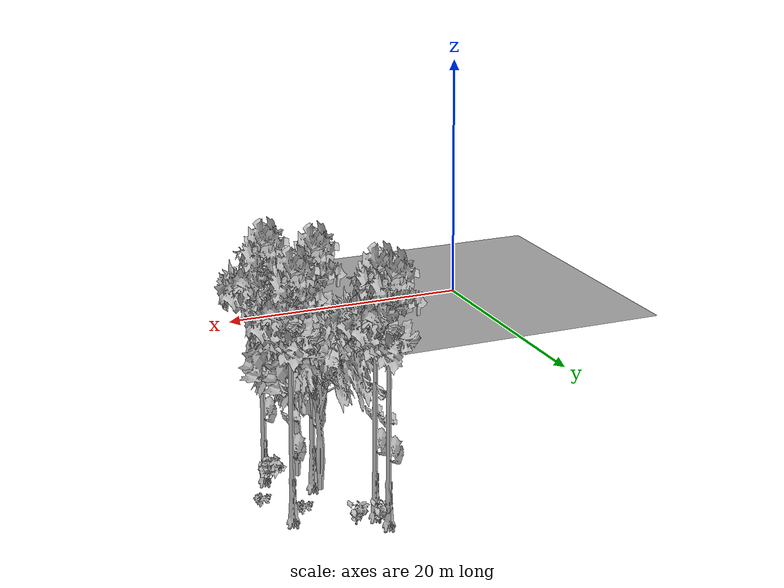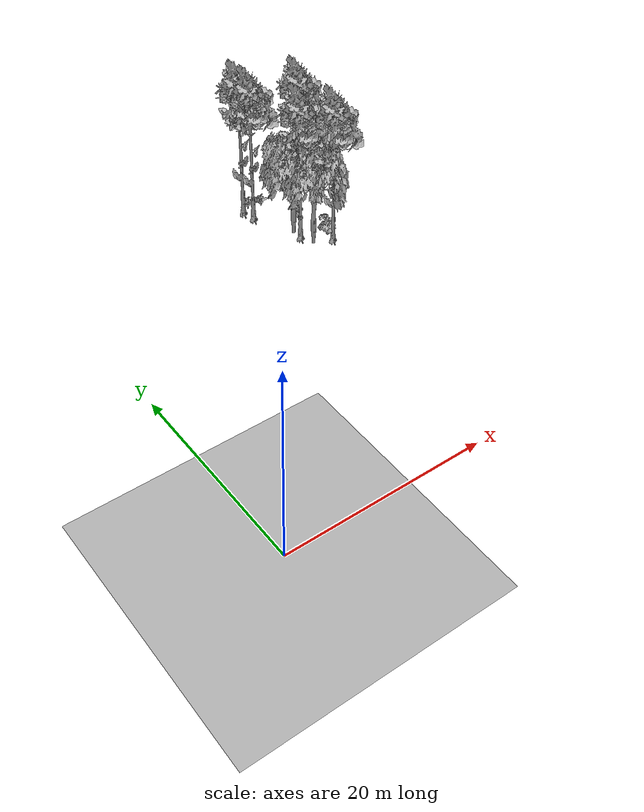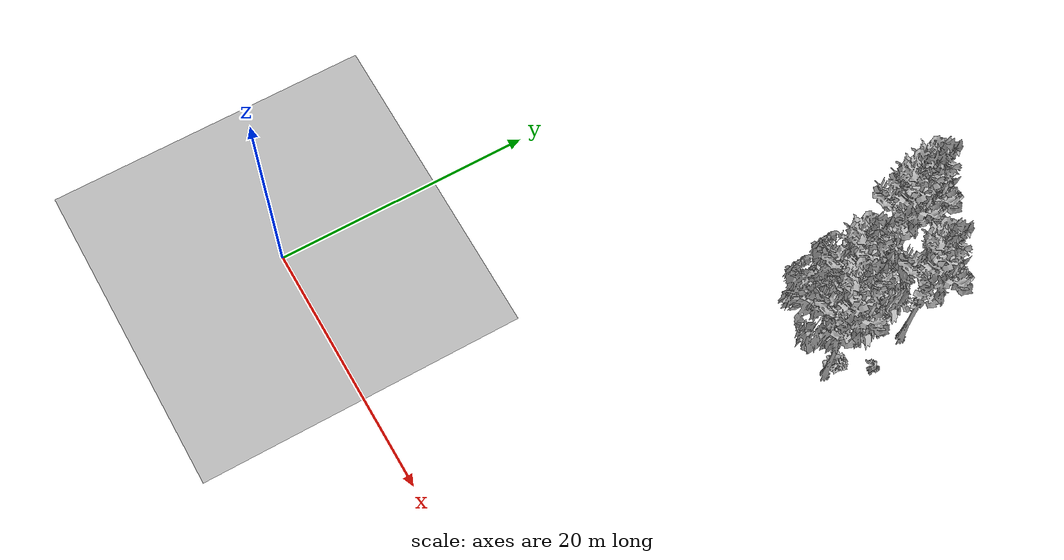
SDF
<sdf version="1.7">
 <world name="default">
  <model name="ground_plane">
   <static>1</static>
   <link name="link">
    <collision name="collision">
     <pose>-50 0 0 0 -0 0</pose>
     <geometry><plane><normal>0 0 1</normal><size>80 80</size></plane></geometry>
     <surface><contact><ode><min_depth>0.01</min_depth><max_vel>0</max_vel></ode></contact></surface>
    </collision>
    <visual name="grass">
     <cast_shadows>0</cast_shadows>
     <geometry>
      <mesh>
       <scale>0.46714285714285714 0.46714285714285714 0.1</scale>
       <uri>file://grass_plane/meshes/grass_plane.dae</uri>
      </mesh>
     </geometry>
    </visual>
   </link>
  </model>
  <model name="Tree 368">
   <static>1</static>
   <pose>24.92402232309221 30.083168545752613 0 1.57079 -0 0</pose>
   <link name="link">
    <collision name="collision">
     <geometry><mesh><scale>3.5 5 3.5</scale><uri>model://tree_2/meshes/tree_2.obj</uri></mesh></geometry>
    </collision>
    <visual name="visual">
     <geometry><mesh><scale>3.5 5 3.5</scale><uri>model://tree_2/meshes/tree_2.obj</uri></mesh></geometry>
    </visual>
   </link>
  </model>
  <model name="Tree 371">
   <static>1</static>
   <pose>22.213944063124195 38.674689030685215 0 1.57079 -0 0</pose>
   <link name="link">
    <collision name="collision">
     <geometry><mesh><scale>3.5 5 3.5</scale><uri>model://tree_9/meshes/tree_9.obj</uri></mesh></geometry>
    </collision>
    <visual name="visual">
     <geometry><mesh><scale>3.5 5 3.5</scale><uri>model://tree_9/meshes/tree_9.obj</uri></mesh></geometry>
    </visual>
   </link>
  </model>
  <model name="Tree 378">
   <static>1</static>
   <pose>27.05958636016682 29.546473164762105 0 1.57079 -0 0</pose>
   <link name="link">
    <collision name="collision">
     <geometry><mesh><scale>3.5 5 3.5</scale><uri>model://tree_9/meshes/tree_9.obj</uri></mesh></geometry>
    </collision>
    <visual name="visual">
     <geometry><mesh><scale>3.5 5 3.5</scale><uri>model://tree_9/meshes/tree_9.obj</uri></mesh></geometry>
    </visual>
   </link>
  </model>
  <model name="Tree 452">
   <static>1</static>
   <pose>24.562983359392383 31.73903686336351 0 1.57079 -0 0</pose>
   <link name="link">
    <collision name="collision">
     <geometry><mesh><scale>3.5 5 3.5</scale><uri>model://tree_9/meshes/tree_9.obj</uri></mesh></geometry>
    </collision>
    <visual name="visual">
     <geometry><mesh><scale>3.5 5 3.5</scale><uri>model://tree_9/meshes/tree_9.obj</uri></mesh></geometry>
    </visual>
   </link>
  </model>
  <model name="Tree 484">
   <static>1</static>
   <pose>24.299701562466566 32.649291122872924 0 1.57079 -0 0</pose>
   <link name="link">
    <collision name="collision">
     <geometry><mesh><scale>3.5 5 3.5</scale><uri>model://tree_2/meshes/tree_2.obj</uri></mesh></geometry>
    </collision>
    <visual name="visual">
     <geometry><mesh><scale>3.5 5 3.5</scale><uri>model://tree_2/meshes/tree_2.obj</uri></mesh></geometry>
    </visual>
   </link>
  </model>
  <model name="Tree 535">
   <static>1</static>
   <pose>22.4898139505776 37.20139377293691 0 1.57079 -0 0</pose>
   <link name="link">
    <collision name="collision">
     <geometry><mesh><scale>3.5 5 3.5</scale><uri>model://tree_9/meshes/tree_9.obj</uri></mesh></geometry>
    </collision>
    <visual name="visual">
     <geometry><mesh><scale>3.5 5 3.5</scale><uri>model://tree_9/meshes/tree_9.obj</uri></mesh></geometry>
    </visual>
   </link>
  </model>
  <model name="Tree 620">
   <static>1</static>
   <pose>27.380418177752688 35.86834679157971 0 1.57079 -0 0</pose>
   <link name="link">
    <collision name="collision">
     <geometry><mesh><scale>3.5 5 3.5</scale><uri>model://tree_9/meshes/tree_9.obj</uri></mesh></geometry>
    </collision>
    <visual name="visual">
     <geometry><mesh><scale>3.5 5 3.5</scale><uri>model://tree_9/meshes/tree_9.obj</uri></mesh></geometry>
    </visual>
   </link>
  </model>
  <model name="Bush 16">
   <static>1</static>
   <pose>22.83352243921813 38.73650087973297 0 1.57079 -0 0</pose>
   <link name="link">
    <collision name="collision">
     <geometry><mesh><scale>2 2 2</scale><uri>model://bush_0/meshes/bush_0.obj</uri></mesh></geometry>
     <surface><contact><collide_without_contact>false</collide_without_contact></contact></surface>
    </collision>
    <visual name="visual">
     <geometry><mesh><scale>2 2 2</scale><uri>model://bush_0/meshes/bush_0.obj</uri></mesh></geometry>
    </visual>
   </link>
  </model>
  <model name="Bush 121">
   <static>1</static>
   <pose>26.260155877660637 34.76898314533267 0 1.57079 -0 0</pose>
   <link name="link">
    <collision name="collision">
     <geometry><mesh><scale>2 2 2</scale><uri>model://bush_2/meshes/bush_2.obj</uri></mesh></geometry>
     <surface><contact><collide_without_contact>false</collide_without_contact></contact></surface>
    </collision>
    <visual name="visual">
     <geometry><mesh><scale>2 2 2</scale><uri>model://bush_2/meshes/bush_2.obj</uri></mesh></geometry>
    </visual>
   </link>
  </model>
  <model name="Bush 376">
   <static>1</static>
   <pose>26.933745831519857 30.21017125195202 0 1.57079 -0 0</pose>
   <link name="link">
    <collision name="collision">
     <geometry><mesh><scale>2 2 2</scale><uri>model://bush_1/meshes/bush_1.obj</uri></mesh></geometry>
     <surface><contact><collide_without_contact>false</collide_without_contact></contact></surface>
    </collision>
    <visual name="visual">
     <geometry><mesh><scale>2 2 2</scale><uri>model://bush_1/meshes/bush_1.obj</uri></mesh></geometry>
    </visual>
   </link>
  </model>
  <model name="Bush 504">
   <static>1</static>
   <pose>24.195104836791288 38.34596855351775 0 1.57079 -0 0</pose>
   <link name="link">
    <collision name="collision">
     <geometry><mesh><scale>2 2 2</scale><uri>model://bush_0/meshes/bush_0.obj</uri></mesh></geometry>
     <surface><contact><collide_without_contact>false</collide_without_contact></contact></surface>
    </collision>
    <visual name="visual">
     <geometry><mesh><scale>2 2 2</scale><uri>model://bush_0/meshes/bush_0.obj</uri></mesh></geometry>
    </visual>
   </link>
  </model>
  <model name="Bush 513">
   <static>1</static>
   <pose>28.29845285835262 32.715627547085774 0 1.57079 -0 0</pose>
   <link name="link">
    <collision name="collision">
     <geometry><mesh><scale>2 2 2</scale><uri>model://bush_2/meshes/bush_2.obj</uri></mesh></geometry>
     <surface><contact><collide_without_contact>false</collide_without_contact></contact></surface>
    </collision>
    <visual name="visual">
     <geometry><mesh><scale>2 2 2</scale><uri>model://bush_2/meshes/bush_2.obj</uri></mesh></geometry>
    </visual>
   </link>
  </model>
 </world>
</sdf>
